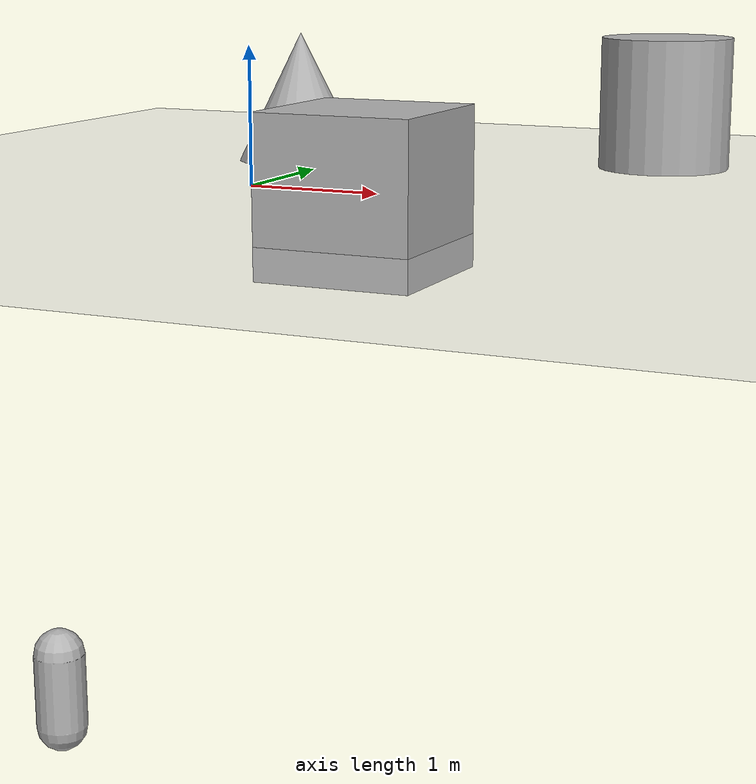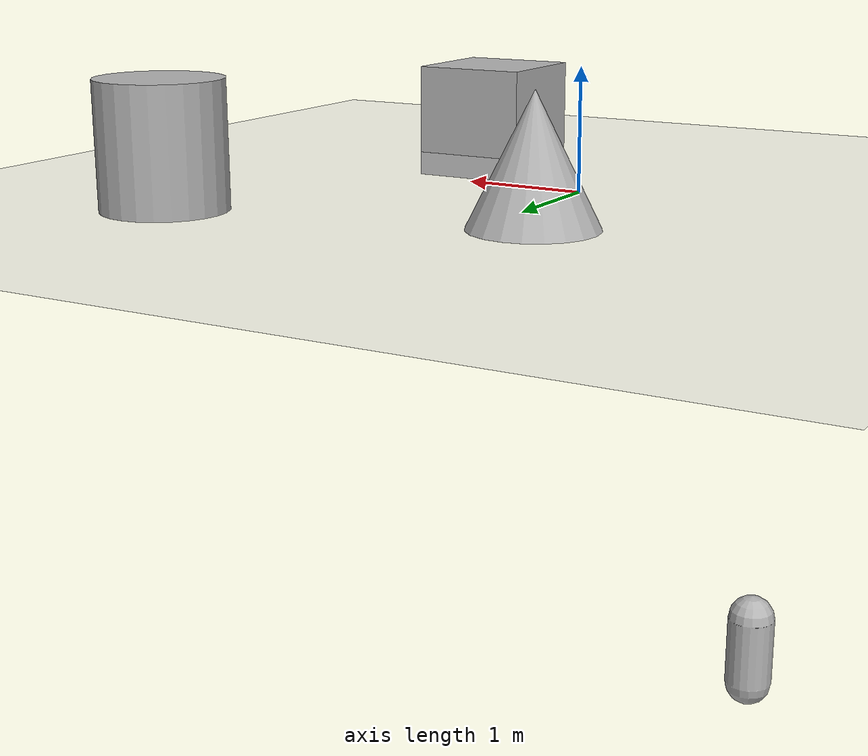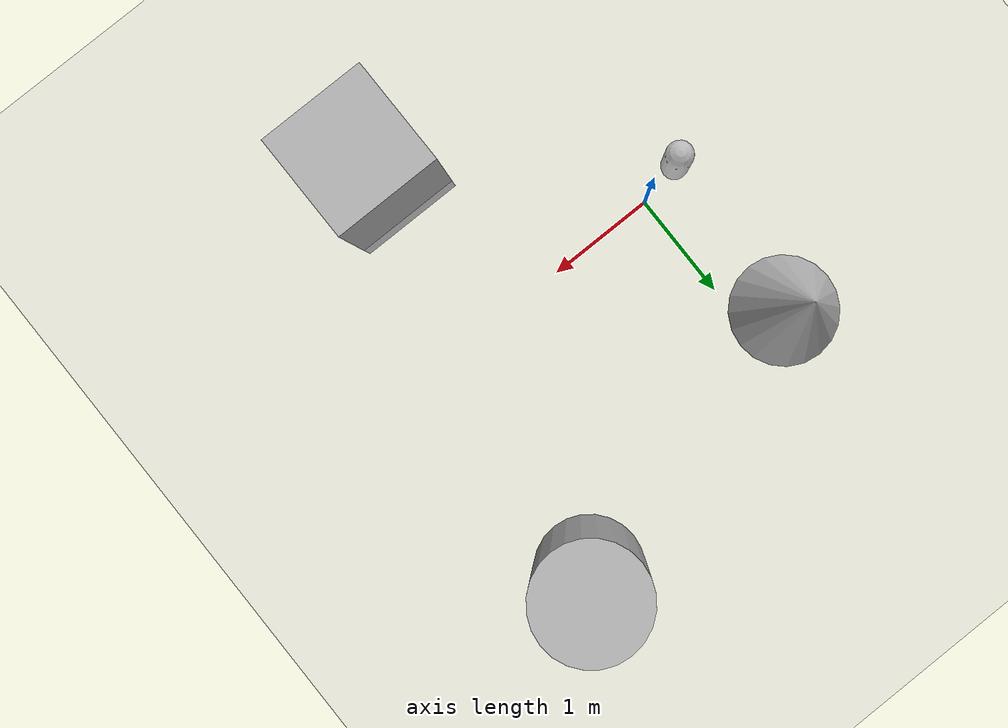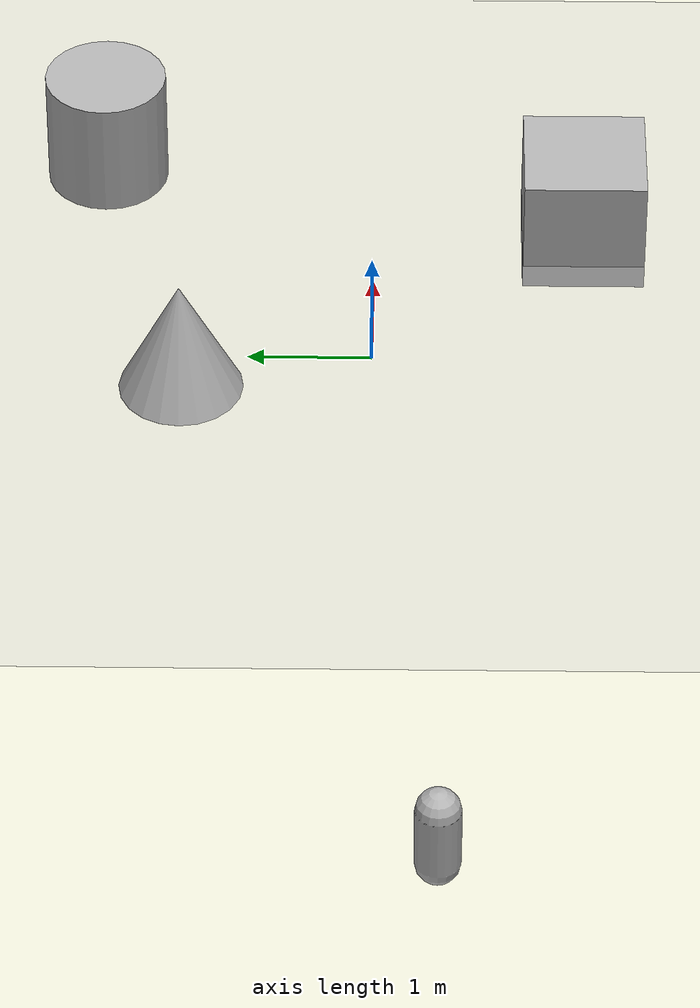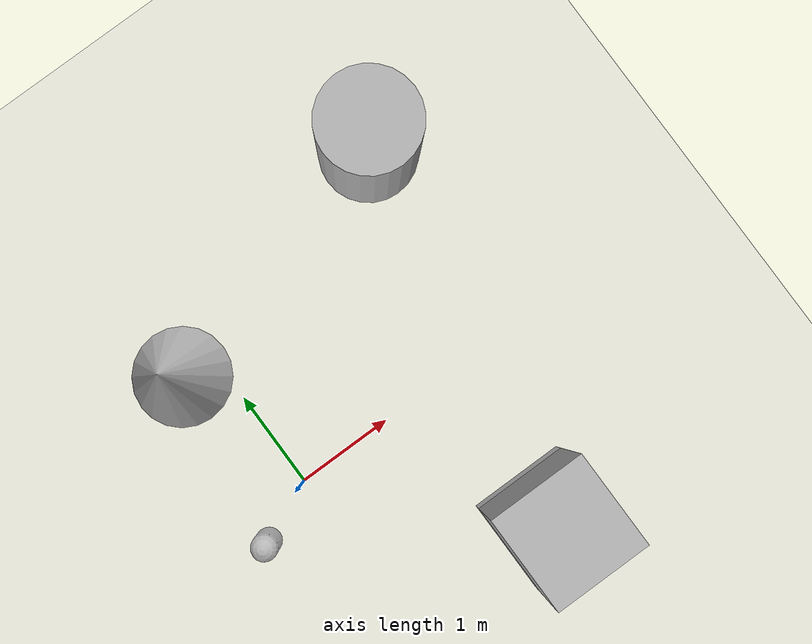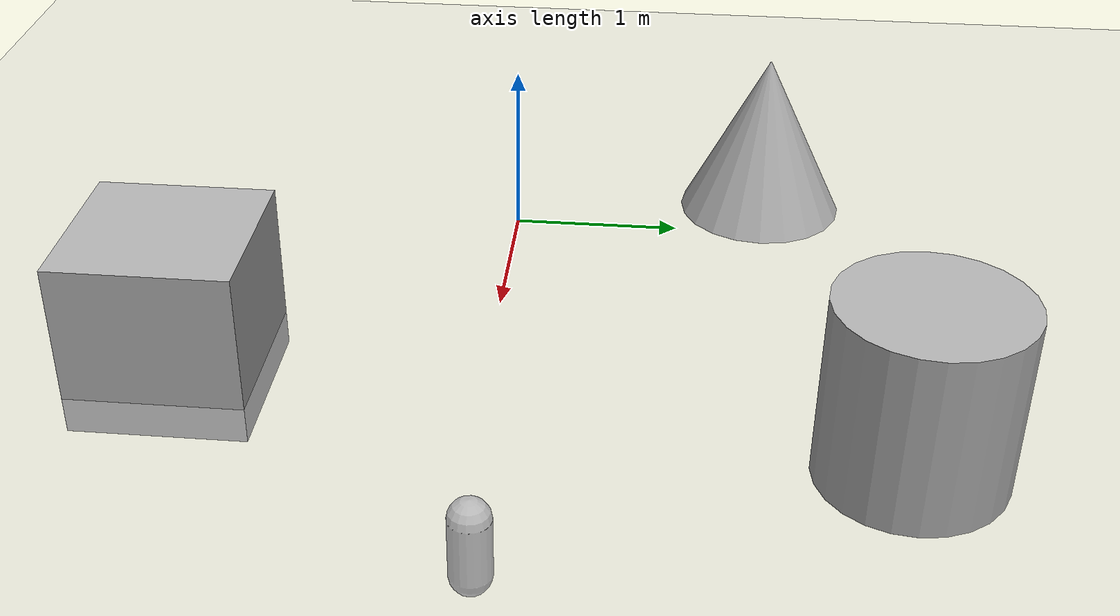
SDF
<sdf version='1.10'>
  <world name='empty'>
    <physics name='1ms' type='ignored'>
      <max_step_size>0.001</max_step_size>
      <real_time_factor>1</real_time_factor>
      <real_time_update_rate>1000</real_time_update_rate>
    </physics>
    <plugin name='gz::sim::systems::Physics' filename='gz-sim-physics-system'/>
    <plugin name='gz::sim::systems::UserCommands' filename='gz-sim-user-commands-system'/>
    <plugin name='gz::sim::systems::SceneBroadcaster' filename='gz-sim-scene-broadcaster-system'/>
    <plugin name='gz::sim::systems::Contact' filename='gz-sim-contact-system'/>
    <plugin name='gz::sim::systems::Sensors' filename='gz-sim-sensors-system'>
      <render_engine>ogre2</render_engine>
    </plugin>
    <plugin name='gz::sim::systems::Imu' filename='gz-sim-imu-system'/>
    <gravity>0 0 -9.8000000000000007</gravity>
    <magnetic_field>5.5644999999999998e-06 2.2875799999999999e-05 -4.2388400000000002e-05</magnetic_field>
    <atmosphere type='adiabatic'/>
    <scene>
      <ambient>0.400000006 0.400000006 0.400000006 1</ambient>
      <background>0.699999988 0.699999988 0.699999988 1</background>
      <shadows>true</shadows>
    </scene>
    <model name='ground_plane'>
      <static>true</static>
      <link name='link'>
        <collision name='collision'>
          <geometry>
            <plane>
              <normal>0 0 1</normal>
              <size>100 100</size>
            </plane>
          </geometry>
          <surface>
            <friction>
              <ode/>
            </friction>
            <bounce/>
            <contact/>
          </surface>
        </collision>
        <visual name='visual'>
          <geometry>
            <plane>
              <normal>0 0 1</normal>
              <size>100 100</size>
            </plane>
          </geometry>
          <material>
            <ambient>0.800000012 0.800000012 0.800000012 1</ambient>
            <diffuse>0.800000012 0.800000012 0.800000012 1</diffuse>
            <specular>0.800000012 0.800000012 0.800000012 1</specular>
          </material>
        </visual>
        <pose>0 0 0 0 0 0</pose>
        <inertial>
          <pose>0 0 0 0 0 0</pose>
          <mass>1</mass>
          <inertia>
            <ixx>1</ixx>
            <ixy>0</ixy>
            <ixz>0</ixz>
            <iyy>1</iyy>
            <iyz>0</iyz>
            <izz>1</izz>
          </inertia>
        </inertial>
        <enable_wind>false</enable_wind>
      </link>
      <pose>0 0 0 0 0 0</pose>
      <self_collide>false</self_collide>
    </model>
    <model name='cylinder'>
      <pose>2.4226300716400146 2.2331500053405762 0.49628902456473928 1.1270533316615294e-16 5.592337531256645e-17 2.1517513411679175e-18</pose>
      <link name='cylinder_link'>
        <inertial>
          <inertia>
            <ixx>0.14580000000000001</ixx>
            <ixy>0</ixy>
            <ixz>0</ixz>
            <iyy>0.14580000000000001</iyy>
            <iyz>0</iyz>
            <izz>0.125</izz>
          </inertia>
          <mass>1</mass>
          <pose>0 0 0 0 0 0</pose>
        </inertial>
        <collision name='cylinder_collision'>
          <geometry>
            <cylinder>
              <radius>0.5</radius>
              <length>1</length>
            </cylinder>
          </geometry>
          <surface>
            <friction>
              <ode/>
            </friction>
            <bounce/>
            <contact/>
          </surface>
        </collision>
        <visual name='cylinder_visual'>
          <geometry>
            <cylinder>
              <radius>0.5</radius>
              <length>1</length>
            </cylinder>
          </geometry>
          <material>
            <ambient>0.300000012 0.300000012 0.300000012 1</ambient>
            <diffuse>0.699999988 0.699999988 0.699999988 1</diffuse>
            <specular>1 1 1 1</specular>
          </material>
        </visual>
        <pose>0 0 0 0 0 0</pose>
        <enable_wind>false</enable_wind>
      </link>
      <static>false</static>
      <self_collide>false</self_collide>
    </model>
    <model name='box'>
      <pose>1.7136900424957275 -1.7314000129699707 0.28258182529354708 1.1100281239684188e-16 -8.6725169713461697e-17 5.5778199153781844e-19</pose>
      <link name='box_link'>
        <inertial>
          <inertia>
            <ixx>0.16666</ixx>
            <ixy>0</ixy>
            <ixz>0</ixz>
            <iyy>0.16666</iyy>
            <iyz>0</iyz>
            <izz>0.16666</izz>
          </inertia>
          <mass>1</mass>
          <pose>0 0 0 0 0 0</pose>
        </inertial>
        <collision name='box_collision'>
          <geometry>
            <box>
              <size>1 1 1</size>
            </box>
          </geometry>
          <surface>
            <friction>
              <ode/>
            </friction>
            <bounce/>
            <contact/>
          </surface>
        </collision>
        <visual name='box_visual'>
          <geometry>
            <box>
              <size>1 1 1</size>
            </box>
          </geometry>
          <material>
            <ambient>0.300000012 0.300000012 0.300000012 1</ambient>
            <diffuse>0.699999988 0.699999988 0.699999988 1</diffuse>
            <specular>1 1 1 1</specular>
          </material>
        </visual>
        <pose>0 0 0 0 0 0</pose>
        <enable_wind>false</enable_wind>
      </link>
      <static>false</static>
      <self_collide>false</self_collide>
    </model>
    <model name='cone'>
      <pose>-0.3651100401778809 1.5259099892140382 0.49999916245472759 6.1321558063924382e-08 -6.131051946420222e-08 1.0720958390339695e-14</pose>
      <link name='cone_link'>
        <inertial>
          <inertia>
            <ixx>0.074999999999999997</ixx>
            <ixy>0</ixy>
            <ixz>0</ixz>
            <iyy>0.074999999999999997</iyy>
            <iyz>0</iyz>
            <izz>0.074999999999999997</izz>
          </inertia>
          <mass>1</mass>
          <pose>0 0 0 0 0 0</pose>
        </inertial>
        <collision name='cone_collision'>
          <geometry>
            <cone>
              <radius>0.5</radius>
              <length>1</length>
            </cone>
          </geometry>
          <surface>
            <friction>
              <ode/>
            </friction>
            <bounce/>
            <contact/>
          </surface>
        </collision>
        <visual name='cone_visual'>
          <geometry>
            <cone>
              <radius>0.5</radius>
              <length>1</length>
            </cone>
          </geometry>
          <material>
            <ambient>0.300000012 0.300000012 0.300000012 1</ambient>
            <diffuse>0.699999988 0.699999988 0.699999988 1</diffuse>
            <specular>1 1 1 1</specular>
          </material>
        </visual>
        <pose>0 0 0 0 0 0</pose>
        <enable_wind>false</enable_wind>
      </link>
      <static>false</static>
      <self_collide>false</self_collide>
    </model>
    <model name='capsule'>
      <pose>-1.4571900367736816 -0.57770800590515137 -3.9583664942407788 0 0 0</pose>
      <link name='capsule_link'>
        <inertial>
          <inertia>
            <ixx>0.074153999999999998</ixx>
            <ixy>0</ixy>
            <ixz>0</ixz>
            <iyy>0.074153999999999998</iyy>
            <iyz>0</iyz>
            <izz>0.018769000000000001</izz>
          </inertia>
          <mass>1</mass>
          <pose>0 0 0 0 0 0</pose>
        </inertial>
        <collision name='capsule_collision'>
          <geometry>
            <capsule>
              <radius>0.20000000000000001</radius>
              <length>0.59999999999999998</length>
            </capsule>
          </geometry>
          <surface>
            <friction>
              <ode/>
            </friction>
            <bounce/>
            <contact/>
          </surface>
        </collision>
        <visual name='capsule_visual'>
          <geometry>
            <capsule>
              <radius>0.20000000000000001</radius>
              <length>0.59999999999999998</length>
            </capsule>
          </geometry>
          <material>
            <ambient>0.300000012 0.300000012 0.300000012 1</ambient>
            <diffuse>0.699999988 0.699999988 0.699999988 1</diffuse>
            <specular>1 1 1 1</specular>
          </material>
        </visual>
        <pose>0 0 0 0 0 0</pose>
        <enable_wind>false</enable_wind>
      </link>
      <static>false</static>
      <self_collide>false</self_collide>
    </model>
    <light name='sun' type='directional'>
      <pose>0 0 10 0 0 0</pose>
      <cast_shadows>true</cast_shadows>
      <intensity>1</intensity>
      <direction>-0.5 0.10000000000000001 -0.90000000000000002</direction>
      <diffuse>0.800000012 0.800000012 0.800000012 1</diffuse>
      <specular>0.200000003 0.200000003 0.200000003 1</specular>
      <attenuation>
        <range>1000</range>
        <linear>0.01</linear>
        <constant>0.90000000000000002</constant>
        <quadratic>0.001</quadratic>
      </attenuation>
      <spot>
        <inner_angle>0</inner_angle>
        <outer_angle>0</outer_angle>
        <falloff>0</falloff>
      </spot>
    </light>
  </world>
</sdf>
